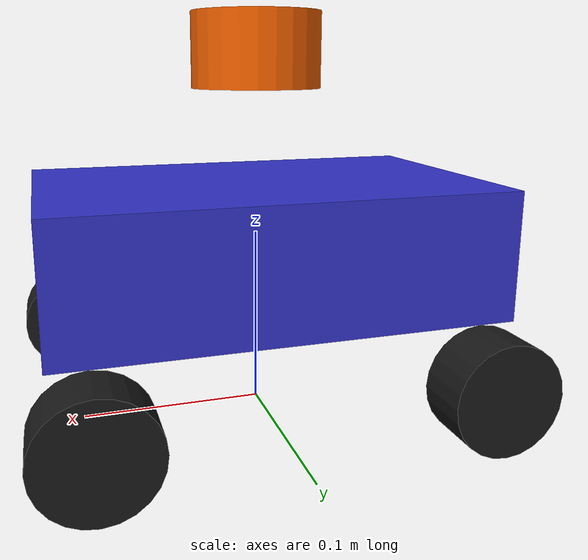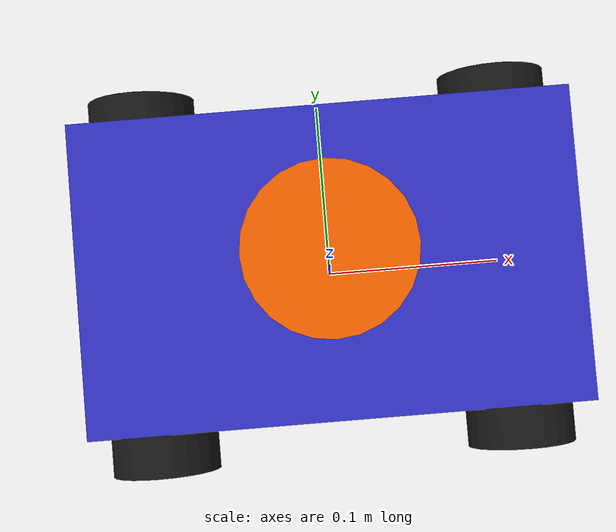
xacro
<?xml version="1.0"?>
<robot xmlns:xacro="http://www.ros.org/wiki/xacro" name="mecanum_robot">

  <xacro:property name="chassis_length" value="0.24"/>
  <xacro:property name="chassis_width"  value="0.15"/>
  <xacro:property name="chassis_height" value="0.07"/>
  <xacro:property name="clearance"      value="0.06"/> <xacro:property name="wheel_radius" value="0.03"/> <xacro:property name="wheel_width"  value="0.03"/>
  <xacro:property name="wheel_offset_x" value="0.10"/>
  <xacro:property name="wheel_offset_y" value="0.09"/>

  <xacro:property name="lidar_radius" value="0.035"/>
  <xacro:property name="lidar_height" value="0.04"/>
  <xacro:property name="lidar_z"      value="0.20"/> <material name="black">  <color rgba="0.1 0.1 0.1 1"/> </material>
  <material name="blue">   <color rgba="0.2 0.2 0.8 1"/> </material>
  <material name="orange"> <color rgba="1 0.4 0 1"/> </material>

  <link name="base_link"/>

  <link name="base_footprint"/>
  <joint name="base_footprint_joint" type="fixed">
    <parent link="base_link"/>
    <child link="base_footprint"/>
    <origin xyz="0 0 0" rpy="0 0 0"/> </joint>

  <link name="chassis">
    <visual>
      <origin xyz="0 0 0" rpy="0 0 0"/>
      <geometry>
        <box size="${chassis_length} ${chassis_width} ${chassis_height}"/>
      </geometry>
      <material name="blue"/>
    </visual>
  </link>

  <joint name="chassis_joint" type="fixed">
    <parent link="base_link"/>
    <child link="chassis"/>
    <origin xyz="0 0 ${clearance + chassis_height/2}" rpy="0 0 0"/>
  </joint>

  <xacro:macro name="mecanum_wheel" params="prefix x_reflect y_reflect">
    <link name="${prefix}_wheel">
      <visual>
        <origin xyz="0 0 0" rpy="1.5708 0 0"/>
        <geometry>
          <cylinder radius="${wheel_radius}" length="${wheel_width}"/>
        </geometry>
        <material name="black"/>
      </visual>
    </link>

    <joint name="${prefix}_wheel_joint" type="fixed">
      <parent link="base_link"/>
      <child link="${prefix}_wheel"/>
      <origin xyz="${x_reflect * wheel_offset_x} ${y_reflect * wheel_offset_y} ${wheel_radius}" rpy="0 0 0"/>
      <axis xyz="0 1 0"/>
    </joint>
  </xacro:macro>

  <xacro:mecanum_wheel prefix="front_left"  x_reflect="1"  y_reflect="1"/>
  <xacro:mecanum_wheel prefix="front_right" x_reflect="1"  y_reflect="-1"/>
  <xacro:mecanum_wheel prefix="rear_left"   x_reflect="-1" y_reflect="1"/>
  <xacro:mecanum_wheel prefix="rear_right"  x_reflect="-1" y_reflect="-1"/>

  <link name="laser">
    <visual>
      <origin xyz="0 0 0" rpy="0 0 0"/>
      <geometry>
        <cylinder radius="${lidar_radius}" length="${lidar_height}"/>
      </geometry>
      <material name="orange"/>
    </visual>
  </link>

  <joint name="laser_joint" type="fixed">
    <parent link="base_link"/>
    <child link="laser"/>
    <origin xyz="0 0 ${lidar_z}" rpy="0 0 0"/>
  </joint>

</robot>
